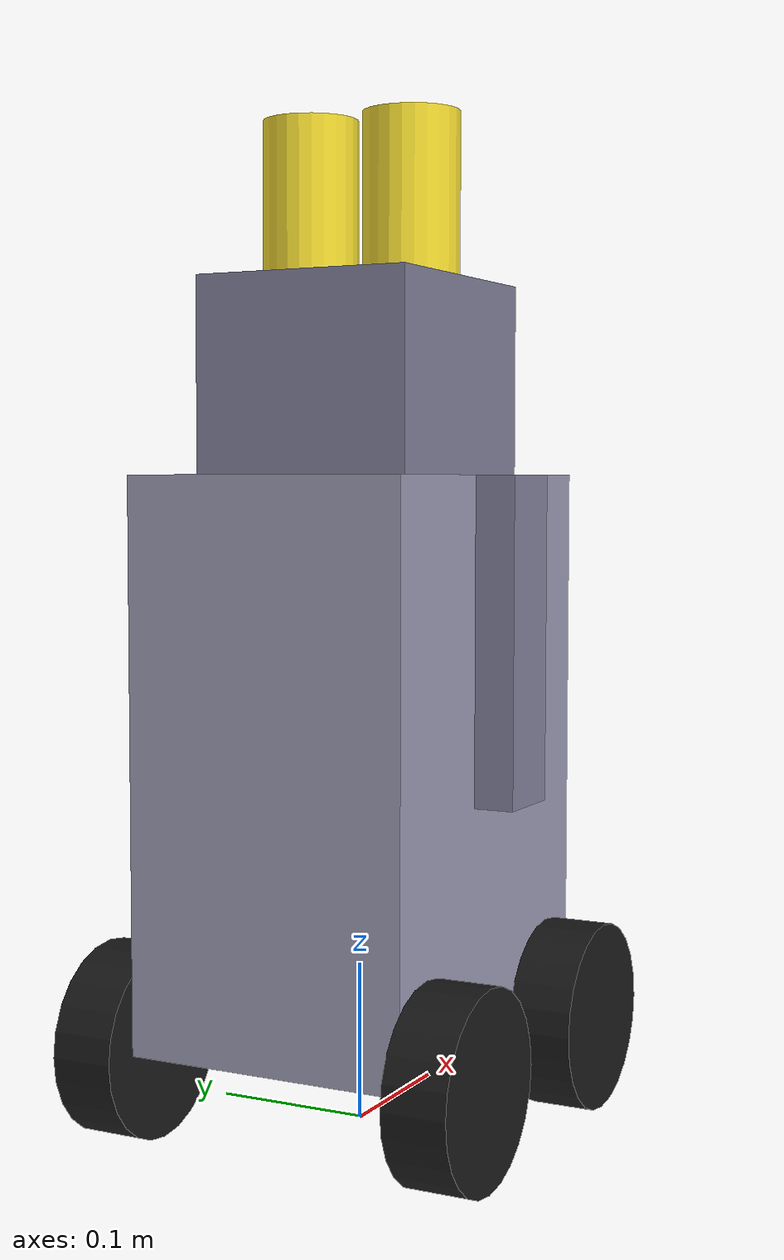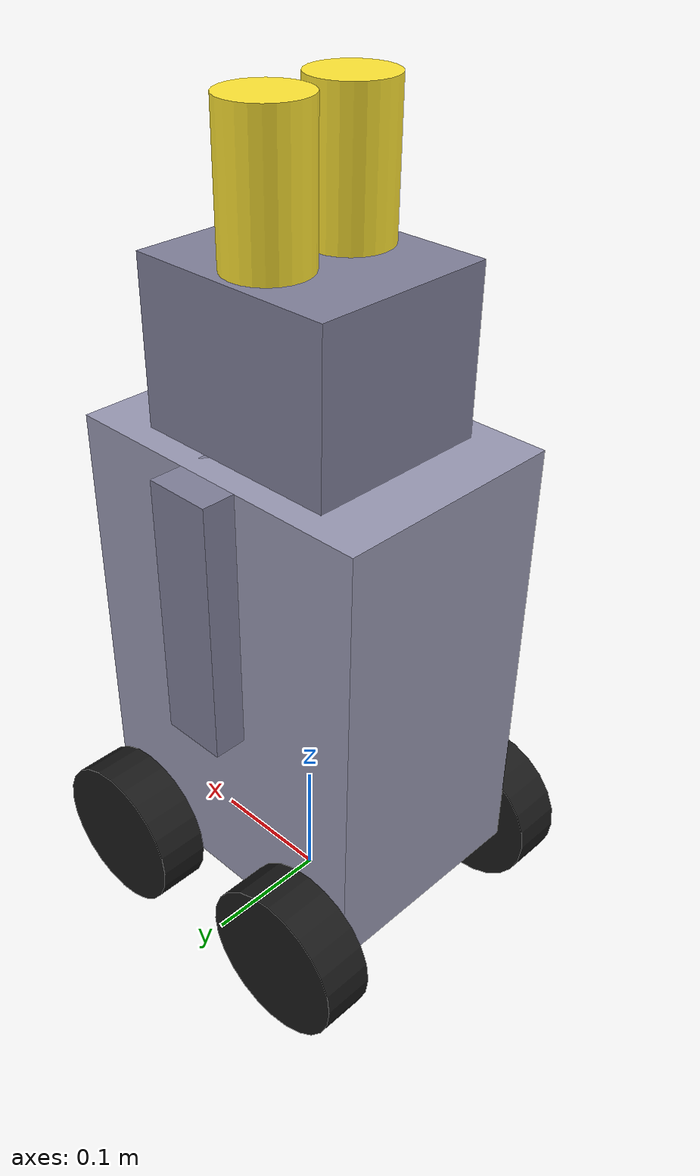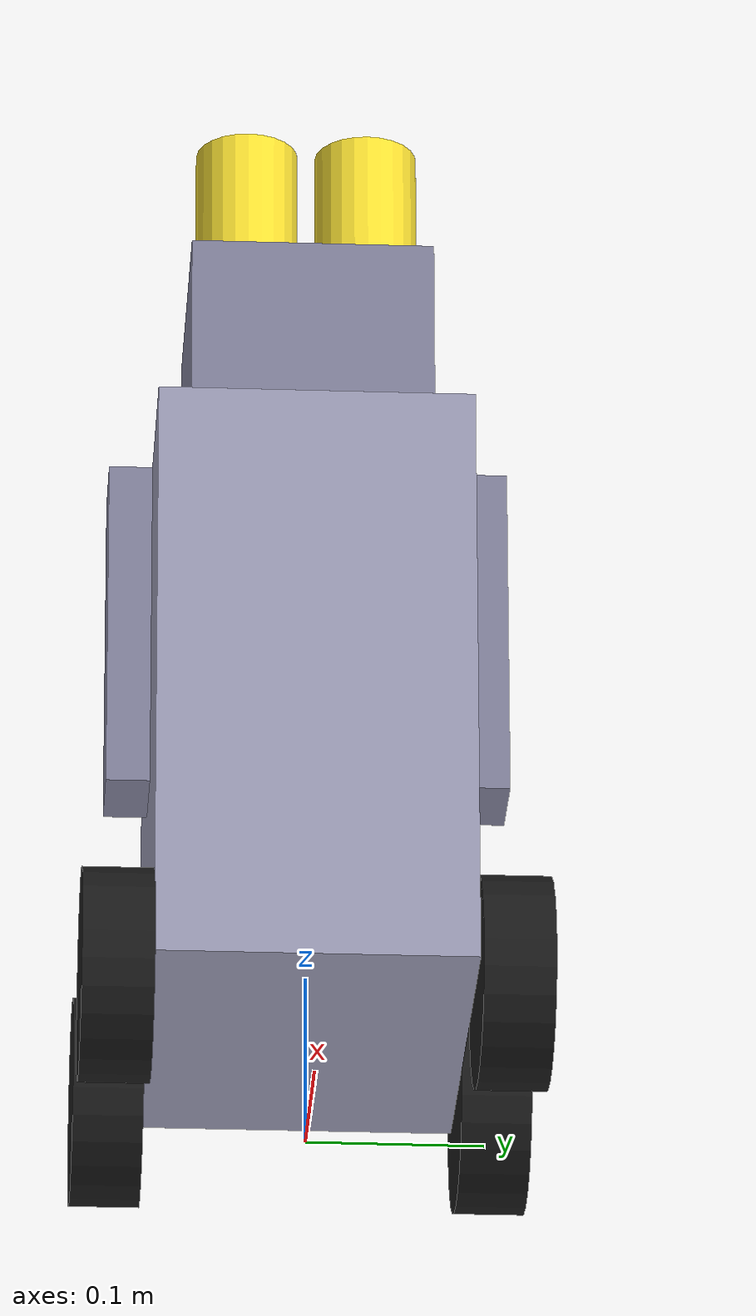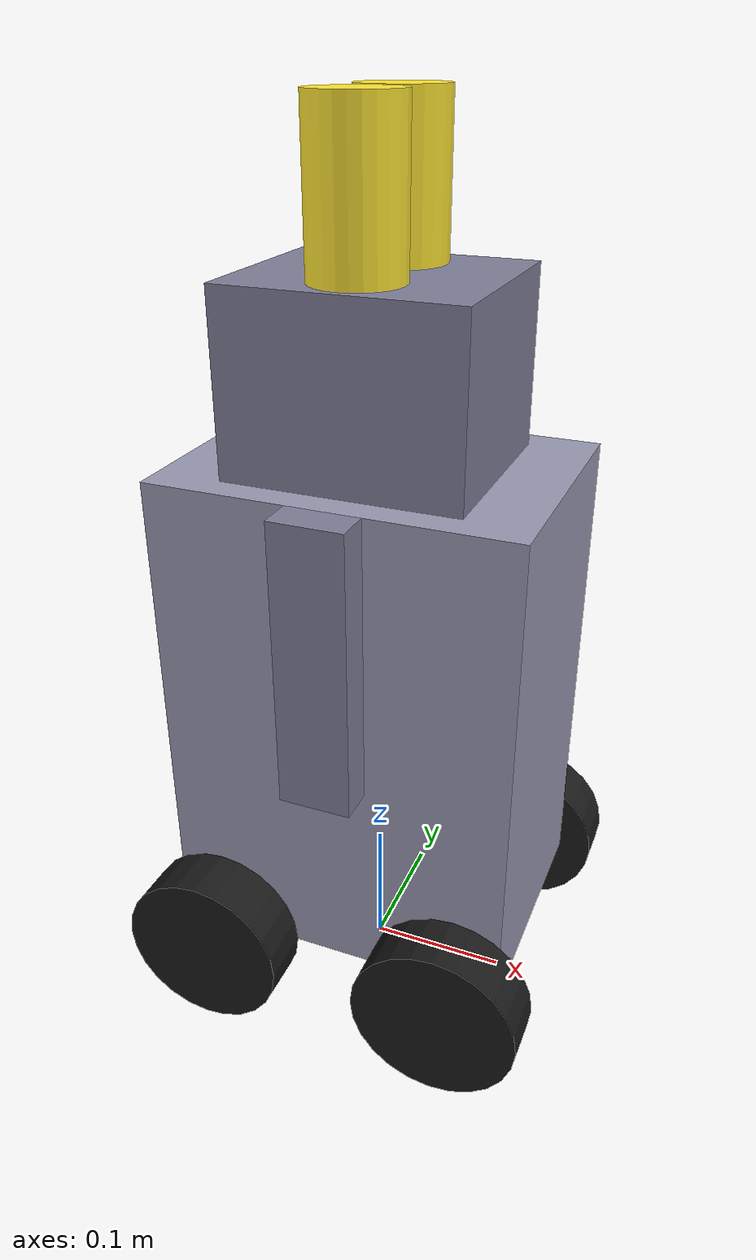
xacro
<?xml version="1.0"?>
<robot xmlns:xacro="http://ros.org/wiki/xacro" name="robot_hare_wheel_bot">

  <!-- === CONSTANTS === -->
  <xacro:property name="base_x" value="0.25"/>
  <xacro:property name="base_y" value="0.18"/>
  <xacro:property name="base_z" value="0.35"/>

  <!-- 4 small wheels (replaces 2 big wheels) -->
  <xacro:property name="drive_wheel_r" value="0.06"/>
  <xacro:property name="drive_wheel_w" value="0.04"/>

  <!-- wheel positions (front/rear) -->
  <xacro:property name="wheel_x_front" value="0.09"/>
  <xacro:property name="wheel_x_rear"  value="-0.09"/>

  <!-- Put wheels exactly outside the body -->
  <xacro:property name="wheel_y_offset" value="${base_y/2 + drive_wheel_w/2}"/>

  <!-- Make body sit correctly above the wheels -->
  <xacro:property name="base_origin_z" value="${drive_wheel_r + base_z/2}"/>

  <xacro:property name="head_x" value="0.16"/>
  <xacro:property name="head_y" value="0.14"/>
  <xacro:property name="head_z" value="0.12"/>
  <xacro:property name="head_origin_z" value="0.06"/>

  <xacro:property name="ear_r" value="0.03"/>
  <xacro:property name="ear_l" value="0.12"/>
  <xacro:property name="ear_y" value="0.035"/>
  <xacro:property name="ear_z" value="0.16"/>

  <xacro:property name="arm_x" value="0.05"/>
  <xacro:property name="arm_y" value="0.05"/>
  <xacro:property name="arm_z" value="0.20"/>
  <xacro:property name="arm_y_offset" value="0.09"/>
  <!-- arms near the top of the body, like before -->
  <xacro:property name="arm_origin_z" value="${base_origin_z + base_z/2 - arm_z/2}"/>

  <!-- === MATERIALS === -->
  <material name="body_mat"><color rgba="0.6 0.6 0.7 1.0"/></material>
  <material name="head_mat"><color rgba="0.5 0.5 0.6 1.0"/></material>
  <material name="arm_mat"><color rgba="0.5 0.5 0.6 1.0"/></material>
  <material name="ear_mat"><color rgba="1.0 0.9 0.2 1.0"/></material>
  <material name="wheel_mat"><color rgba="0.1 0.1 0.1 1.0"/></material>

  <!-- === BASE LINK === -->
  <link name="base_link">
    <inertial>
      <origin xyz="0 0 ${base_origin_z}"/>
      <mass value="3.5"/>
      <inertia ixx="0.12" ixy="0" ixz="0"
               iyy="0.12" iyz="0"
               izz="0.15"/>
    </inertial>

    <visual>
      <origin xyz="0 0 ${base_origin_z}"/>
      <geometry><box size="${base_x} ${base_y} ${base_z}"/></geometry>
      <material name="body_mat"/>
    </visual>

    <collision>
      <origin xyz="0 0 ${base_origin_z}"/>
      <geometry><box size="${base_x} ${base_y} ${base_z}"/></geometry>
    </collision>
  </link>

  <!-- === HEAD === -->
  <joint name="head_joint" type="fixed">
    <parent link="base_link"/>
    <child  link="head_link"/>
    <!-- attach head to the top face of the base -->
    <origin xyz="0 0 ${base_origin_z + base_z/2}"/>
  </joint>

  <link name="head_link">
    <inertial>
      <origin xyz="0 0 0"/>
      <mass value="1.0"/>
      <inertia ixx="0.02" ixy="0" ixz="0"
               iyy="0.02" iyz="0"
               izz="0.02"/>
    </inertial>

    <visual>
      <origin xyz="0 0 ${head_origin_z}"/>
      <geometry><box size="${head_x} ${head_y} ${head_z}"/></geometry>
      <material name="head_mat"/>
    </visual>

    <collision>
      <origin xyz="0 0 ${head_origin_z}"/>
      <geometry><box size="${head_x} ${head_y} ${head_z}"/></geometry>
    </collision>
  </link>

  <!-- === EAR MACRO === -->
  <xacro:macro name="ear" params="name ysign">
    <joint name="${name}_joint" type="fixed">
      <parent link="head_link"/>
      <child  link="${name}"/>
      <origin xyz="0 0 0"/>
    </joint>

    <link name="${name}">
      <inertial>
        <origin xyz="0 0 0"/>
        <mass value="0.1"/>
        <inertia ixx="0.0002" ixy="0" ixz="0"
                 iyy="0.0002" iyz="0"
                 izz="0.0001"/>
      </inertial>

      <visual>
        <origin xyz="0 ${ysign*ear_y} ${ear_z}"/>
        <geometry><cylinder radius="${ear_r}" length="${ear_l}"/></geometry>
        <material name="ear_mat"/>
      </visual>

      <collision>
        <origin xyz="0 ${ysign*ear_y} ${ear_z}"/>
        <geometry><cylinder radius="${ear_r}" length="${ear_l}"/></geometry>
      </collision>
    </link>
  </xacro:macro>

  <xacro:ear name="left_ear"  ysign="1"/>
  <xacro:ear name="right_ear" ysign="-1"/>

  <!-- === ARM MACRO === -->
  <xacro:macro name="arm" params="name ysign">
    <joint name="${name}_joint" type="fixed">
      <parent link="base_link"/>
      <child  link="${name}"/>
      <origin xyz="0 0 0"/>
    </joint>

    <link name="${name}">
      <inertial>
        <origin xyz="0 0 0"/>
        <mass value="0.3"/>
        <inertia ixx="0.005" ixy="0" ixz="0"
                 iyy="0.005" iyz="0"
                 izz="0.005"/>
      </inertial>

      <visual>
        <origin xyz="0 ${ysign*arm_y_offset} ${arm_origin_z}"/>
        <geometry><box size="${arm_x} ${arm_y} ${arm_z}"/></geometry>
        <material name="arm_mat"/>
      </visual>

      <collision>
        <origin xyz="0 ${ysign*arm_y_offset} ${arm_origin_z}"/>
        <geometry><box size="${arm_x} ${arm_y} ${arm_z}"/></geometry>
      </collision>
    </link>
  </xacro:macro>

  <xacro:arm name="left_arm"  ysign="1"/>
  <xacro:arm name="right_arm" ysign="-1"/>

  <!-- === 4 SMALL WHEELS MACRO === -->
  <xacro:macro name="drive_wheel" params="name x ysign">
    <joint name="${name}_joint" type="continuous">
      <parent link="base_link"/>
      <child  link="${name}_link"/>
      <origin xyz="${x} ${ysign*wheel_y_offset} ${drive_wheel_r}"/>
      <axis xyz="0 1 0"/>
    </joint>

    <link name="${name}_link">
      <inertial>
        <origin xyz="0 0 0"/>
        <mass value="0.25"/>
        <inertia ixx="0.003" ixy="0" ixz="0"
                 iyy="0.003" iyz="0"
                 izz="0.003"/>
      </inertial>

      <visual>
        <origin xyz="0 0 0" rpy="1.5708 0 0"/>
        <geometry><cylinder radius="${drive_wheel_r}" length="${drive_wheel_w}"/></geometry>
        <material name="wheel_mat"/>
      </visual>

      <collision>
        <origin xyz="0 0 0" rpy="1.5708 0 0"/>
        <geometry><cylinder radius="${drive_wheel_r}" length="${drive_wheel_w}"/></geometry>
      </collision>
    </link>
  </xacro:macro>

  <!-- Front pair -->
  <xacro:drive_wheel name="front_left_wheel"  x="${wheel_x_front}" ysign="1"/>
  <xacro:drive_wheel name="front_right_wheel" x="${wheel_x_front}" ysign="-1"/>

  <!-- Rear pair -->
  <xacro:drive_wheel name="rear_left_wheel"   x="${wheel_x_rear}"  ysign="1"/>
  <xacro:drive_wheel name="rear_right_wheel"  x="${wheel_x_rear}"  ysign="-1"/>

</robot>
